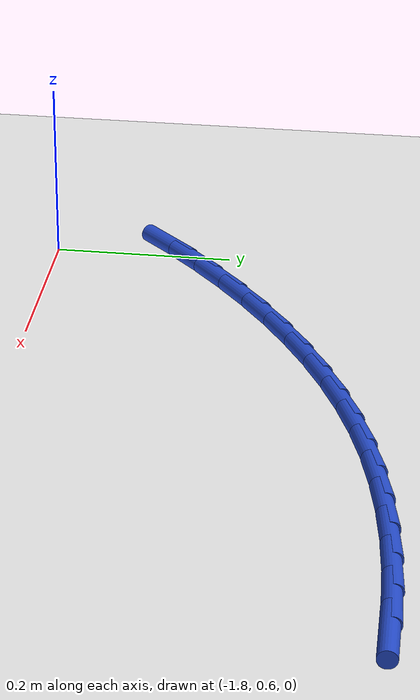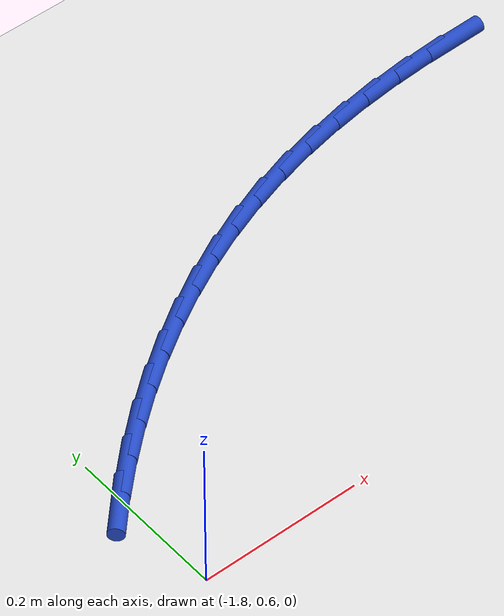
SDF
<sdf version="1.6">
 <world name="default">
  <model name="ground_plane">
   <static>1</static>
   <link name="link">
    <collision name="collision">
     <geometry><plane><normal>0 0 1</normal><size>100 100</size></plane></geometry>
     <surface><friction><ode><mu>100</mu><mu2>50</mu2></ode></friction></surface>
    </collision>
    <visual name="visual">
     <cast_shadows>0</cast_shadows>
     <geometry><plane><normal>0 0 1</normal><size>100 100</size></plane></geometry>
     <material>
      <script><uri>file://media/materials/scripts/gazebo.material</uri><name>Gazebo/WhiteGlow</name></script>
     </material>
    </visual>
   </link>
  </model>
  <model name="line">
   <link name="link_33">
    <pose>-1.084801324058479 1.0317105224142329 0.01 0 1.57 0.020879429065244547</pose>
    <collision name="collision">
     <geometry><cylinder><radius>0.01</radius><length>0.08</length></cylinder></geometry>
    </collision>
    <visual name="visual">
     <material>
      <script><name>Gazebo/Blue</name><uri>file://media/materials/scripts/gazebo.material</uri></script>
     </material>
     <geometry><cylinder><radius>0.01</radius><length>0.08</length></cylinder></geometry>
    </visual>
   </link>
   <link name="link_34">
    <pose>-1.1357246782411277 1.0306471173176388 0.01 0 1.57 0.06309230838677791</pose>
    <collision name="collision">
     <geometry><cylinder><radius>0.01</radius><length>0.08</length></cylinder></geometry>
    </collision>
    <visual name="visual">
     <material>
      <script><name>Gazebo/Blue</name><uri>file://media/materials/scripts/gazebo.material</uri></script>
     </material>
     <geometry><cylinder><radius>0.01</radius><length>0.08</length></cylinder></geometry>
    </visual>
   </link>
   <link name="link_35">
    <pose>-1.186371503734979 1.0274474454777602 0.01 0 1.57 0.1078341973587031</pose>
    <collision name="collision">
     <geometry><cylinder><radius>0.01</radius><length>0.08</length></cylinder></geometry>
    </collision>
    <visual name="visual">
     <material>
      <script><name>Gazebo/Blue</name><uri>file://media/materials/scripts/gazebo.material</uri></script>
     </material>
     <geometry><cylinder><radius>0.01</radius><length>0.08</length></cylinder></geometry>
    </visual>
   </link>
   <link name="link_36">
    <pose>-1.2366290831826252 1.022006855254881 0.01 0 1.57 0.1552291281593677</pose>
    <collision name="collision">
     <geometry><cylinder><radius>0.01</radius><length>0.08</length></cylinder></geometry>
    </collision>
    <visual name="visual">
     <material>
      <script><name>Gazebo/Blue</name><uri>file://media/materials/scripts/gazebo.material</uri></script>
     </material>
     <geometry><cylinder><radius>0.01</radius><length>0.08</length></cylinder></geometry>
    </visual>
   </link>
   <link name="link_37">
    <pose>-1.2863846992266597 1.0142206950092856 0.01 0 1.57 0.20536978254657814</pose>
    <collision name="collision">
     <geometry><cylinder><radius>0.01</radius><length>0.08</length></cylinder></geometry>
    </collision>
    <visual name="visual">
     <material>
      <script><name>Gazebo/Blue</name><uri>file://media/materials/scripts/gazebo.material</uri></script>
     </material>
     <geometry><cylinder><radius>0.01</radius><length>0.08</length></cylinder></geometry>
    </visual>
   </link>
   <link name="link_38">
    <pose>-1.3355256345096753 1.0039843131012574 0.01 0 1.57 0.2583057739460079</pose>
    <collision name="collision">
     <geometry><cylinder><radius>0.01</radius><length>0.08</length></cylinder></geometry>
    </collision>
    <visual name="visual">
     <material>
      <script><name>Gazebo/Blue</name><uri>file://media/materials/scripts/gazebo.material</uri></script>
     </material>
     <geometry><cylinder><radius>0.01</radius><length>0.08</length></cylinder></geometry>
    </visual>
   </link>
   <link name="link_39">
    <pose>-1.3839391716742644 0.9911930578910801 0.01 0 1.57 0.3140304893717103</pose>
    <collision name="collision">
     <geometry><cylinder><radius>0.01</radius><length>0.08</length></cylinder></geometry>
    </collision>
    <visual name="visual">
     <material>
      <script><name>Gazebo/Blue</name><uri>file://media/materials/scripts/gazebo.material</uri></script>
     </material>
     <geometry><cylinder><radius>0.01</radius><length>0.08</length></cylinder></geometry>
    </visual>
   </link>
   <link name="link_40">
    <pose>-1.4315125959481765 0.9757422881308203 0.01 0 1.57 0.37149928176242936</pose>
    <collision name="collision">
     <geometry><cylinder><radius>0.01</radius><length>0.08</length></cylinder></geometry>
    </collision>
    <visual name="visual">
     <material>
      <script><name>Gazebo/Blue</name><uri>file://media/materials/scripts/gazebo.material</uri></script>
     </material>
     <geometry><cylinder><radius>0.01</radius><length>0.08</length></cylinder></geometry>
    </visual>
   </link>
   <link name="link_41">
    <pose>-1.4781449978758017 0.9575748174356359 0.01 0 1.57 0.4274257631326007</pose>
    <collision name="collision">
     <geometry><cylinder><radius>0.01</radius><length>0.08</length></cylinder></geometry>
    </collision>
    <visual name="visual">
     <material>
      <script><name>Gazebo/Blue</name><uri>file://media/materials/scripts/gazebo.material</uri></script>
     </material>
     <geometry><cylinder><radius>0.01</radius><length>0.08</length></cylinder></geometry>
    </visual>
   </link>
   <link name="link_42">
    <pose>-1.5237744572125047 0.936790187759734 0.01 0 1.57 0.481145568746761</pose>
    <collision name="collision">
     <geometry><cylinder><radius>0.01</radius><length>0.08</length></cylinder></geometry>
    </collision>
    <visual name="visual">
     <material>
      <script><name>Gazebo/Blue</name><uri>file://media/materials/scripts/gazebo.material</uri></script>
     </material>
     <geometry><cylinder><radius>0.01</radius><length>0.08</length></cylinder></geometry>
    </visual>
   </link>
   <link name="link_43">
    <pose>-1.5683470916354774 0.9135202517942169 0.01 0 1.57 0.5327072483729741</pose>
    <collision name="collision">
     <geometry><cylinder><radius>0.01</radius><length>0.08</length></cylinder></geometry>
    </collision>
    <visual name="visual">
     <material>
      <script><name>Gazebo/Blue</name><uri>file://media/materials/scripts/gazebo.material</uri></script>
     </material>
     <geometry><cylinder><radius>0.01</radius><length>0.08</length></cylinder></geometry>
    </visual>
   </link>
   <link name="link_44">
    <pose>-1.611809018821912 0.8878968622301872 0.01 0 1.57 0.5821986799582717</pose>
    <collision name="collision">
     <geometry><cylinder><radius>0.01</radius><length>0.08</length></cylinder></geometry>
    </collision>
    <visual name="visual">
     <material>
      <script><name>Gazebo/Blue</name><uri>file://media/materials/scripts/gazebo.material</uri></script>
     </material>
     <geometry><cylinder><radius>0.01</radius><length>0.08</length></cylinder></geometry>
    </visual>
   </link>
   <link name="link_45">
    <pose>-1.654106356449002 0.8600518717587466 0.01 0 1.57 0.6297382170080834</pose>
    <collision name="collision">
     <geometry><cylinder><radius>0.01</radius><length>0.08</length></cylinder></geometry>
    </collision>
    <visual name="visual">
     <material>
      <script><name>Gazebo/Blue</name><uri>file://media/materials/scripts/gazebo.material</uri></script>
     </material>
     <geometry><cylinder><radius>0.01</radius><length>0.08</length></cylinder></geometry>
    </visual>
   </link>
   <link name="link_46">
    <pose>-1.6951852221939403 0.8301171330709974 0.01 0 1.57 0.6754669759542755</pose>
    <collision name="collision">
     <geometry><cylinder><radius>0.01</radius><length>0.08</length></cylinder></geometry>
    </collision>
    <visual name="visual">
     <material>
      <script><name>Gazebo/Blue</name><uri>file://media/materials/scripts/gazebo.material</uri></script>
     </material>
     <geometry><cylinder><radius>0.01</radius><length>0.08</length></cylinder></geometry>
    </visual>
   </link>
   <link name="link_47">
    <pose>-1.734991733733918 0.7982244988580417 0.01 0 1.57 0.719542466077217</pose>
    <collision name="collision">
     <geometry><cylinder><radius>0.01</radius><length>0.08</length></cylinder></geometry>
    </collision>
    <visual name="visual">
     <material>
      <script><name>Gazebo/Blue</name><uri>file://media/materials/scripts/gazebo.material</uri></script>
     </material>
     <geometry><cylinder><radius>0.01</radius><length>0.08</length></cylinder></geometry>
    </visual>
   </link>
   <link name="link_48">
    <pose>-1.7734720087461278 0.7645058218109818 0.01 0 1.57 0.7621335900425279</pose>
    <collision name="collision">
     <geometry><cylinder><radius>0.01</radius><length>0.08</length></cylinder></geometry>
    </collision>
    <visual name="visual">
     <material>
      <script><name>Gazebo/Blue</name><uri>file://media/materials/scripts/gazebo.material</uri></script>
     </material>
     <geometry><cylinder><radius>0.01</radius><length>0.08</length></cylinder></geometry>
    </visual>
   </link>
   <link name="link_49">
    <pose>-1.810572164907764 0.7290929546209204 0.01 0 1.57 0.8034270599123888</pose>
    <collision name="collision">
     <geometry><cylinder><radius>0.01</radius><length>0.08</length></cylinder></geometry>
    </collision>
    <visual name="visual">
     <material>
      <script><name>Gazebo/Blue</name><uri>file://media/materials/scripts/gazebo.material</uri></script>
     </material>
     <geometry><cylinder><radius>0.01</radius><length>0.08</length></cylinder></geometry>
    </visual>
   </link>
  </model>
 </world>
</sdf>
